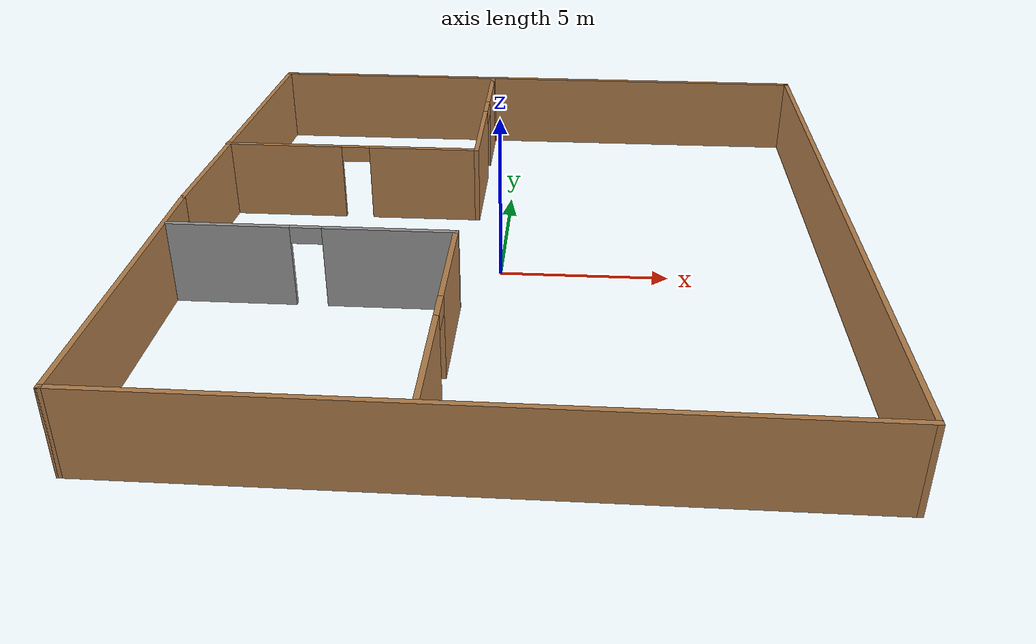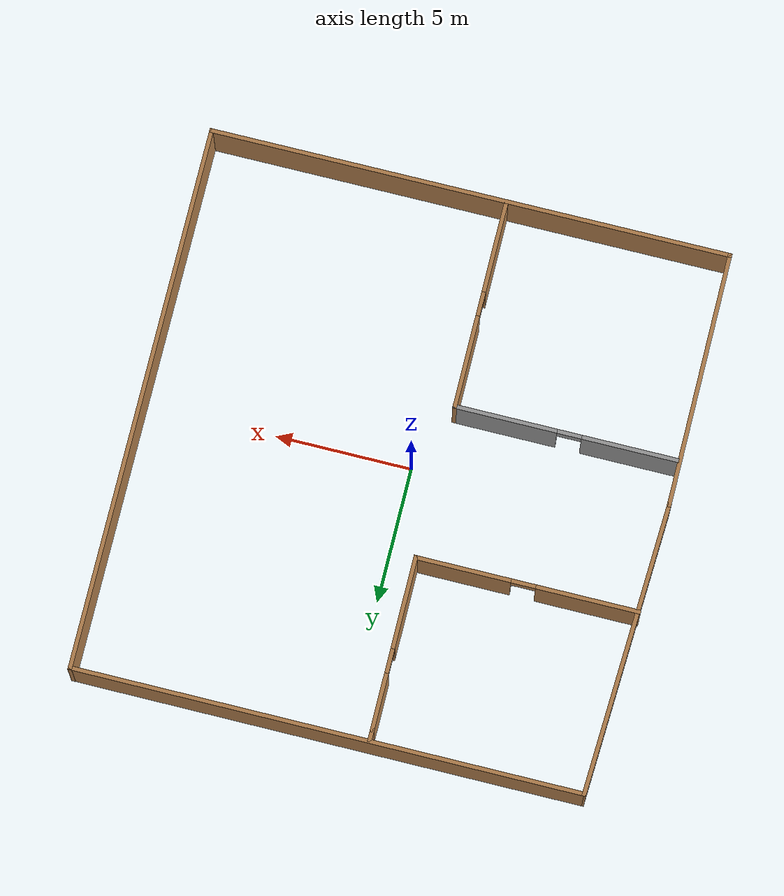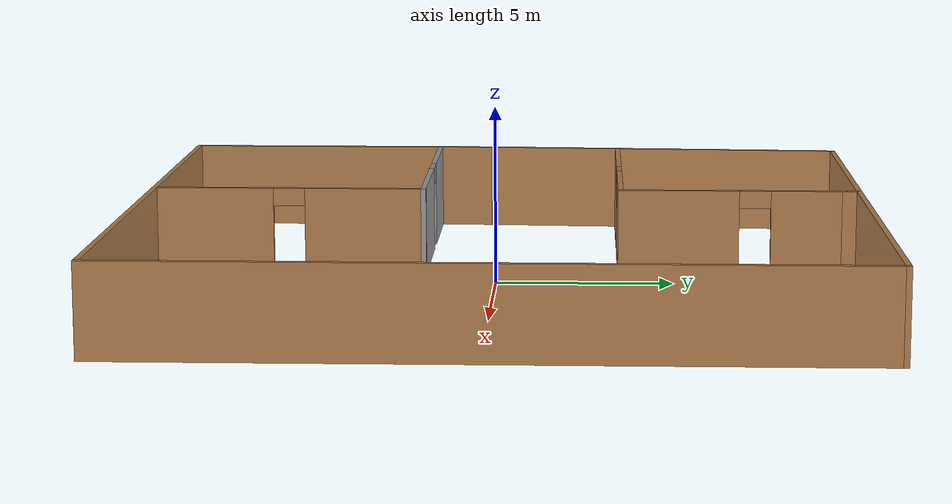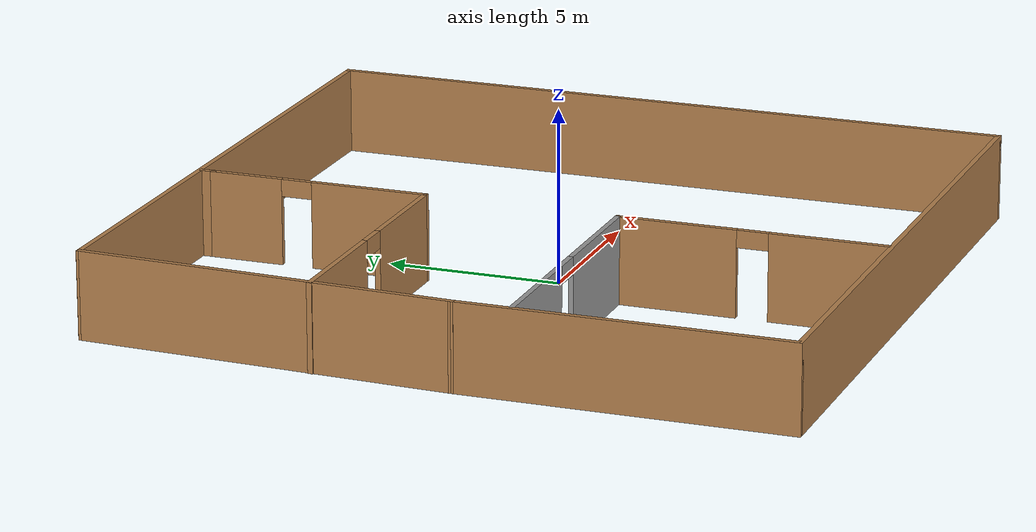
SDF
<?xml version='1.0'?>
<sdf version='1.7'>
  <model name='nha'>
    <pose>0.259593 0.237045 0 0 -0 0</pose>
    <link name='Wall_0'>
      <collision name='Wall_0_Collision'>
        <geometry>
          <box>
            <size>9.5 0.15 2.5</size>
          </box>
        </geometry>
        <pose>0 0 1.25 0 -0 0</pose>
      </collision>
      <visual name='Wall_0_Visual'>
        <pose>0 0 1.25 0 -0 0</pose>
        <geometry>
          <box>
            <size>9.5 0.15 2.5</size>
          </box>
        </geometry>
        <material>
          <script>
            <uri>file://media/materials/scripts/gazebo.material</uri>
            <name>Gazebo/Wood</name>
          </script>
          <ambient>1 1 1 1</ambient>
        </material>
        <meta>
          <layer>0</layer>
        </meta>
      </visual>
      <pose>-9.5483 -5.3767 0 0 -0 -1.5708</pose>
    </link>
    <link name='Wall_1'>
      <collision name='Wall_1_Collision'>
        <geometry>
          <box>
            <size>19.25 0.15 2.5</size>
          </box>
        </geometry>
        <pose>0 0 1.25 0 -0 0</pose>
      </collision>
      <visual name='Wall_1_Visual'>
        <pose>0 0 1.25 0 -0 0</pose>
        <geometry>
          <box>
            <size>19.25 0.15 2.5</size>
          </box>
        </geometry>
        <material>
          <script>
            <uri>file://media/materials/scripts/gazebo.material</uri>
            <name>Gazebo/Wood</name>
          </script>
          <ambient>1 1 1 1</ambient>
        </material>
        <meta>
          <layer>0</layer>
        </meta>
      </visual>
      <pose>0.001702 -10.0517 0 0 -0 0</pose>
    </link>
    <link name='Wall_10'>
      <pose>-1.33635 -6.13715 0 0 -0 1.5708</pose>
      <visual name='Wall_10_Visual_0'>
        <pose>-2.1859 0 1.25 0 -0 0</pose>
        <geometry>
          <box>
            <size>3.3782 0.15 2.5</size>
          </box>
        </geometry>
        <material>
          <script>
            <uri>file://media/materials/scripts/gazebo.material</uri>
            <name>Gazebo/Wood</name>
          </script>
          <ambient>1 1 1 1</ambient>
        </material>
        <meta>
          <layer>0</layer>
        </meta>
      </visual>
      <collision name='Wall_10_Collision_0'>
        <geometry>
          <box>
            <size>3.3782 0.15 2.5</size>
          </box>
        </geometry>
        <pose>-2.1859 0 1.25 0 -0 0</pose>
      </collision>
      <visual name='Wall_10_Visual_1'>
        <pose>2.1391 0 1.25 0 -0 0</pose>
        <geometry>
          <box>
            <size>3.4718 0.15 2.5</size>
          </box>
        </geometry>
        <material>
          <script>
            <uri>file://media/materials/scripts/gazebo.material</uri>
            <name>Gazebo/Wood</name>
          </script>
          <ambient>1 1 1 1</ambient>
        </material>
        <meta>
          <layer>0</layer>
        </meta>
      </visual>
      <collision name='Wall_10_Collision_1'>
        <geometry>
          <box>
            <size>3.4718 0.15 2.5</size>
          </box>
        </geometry>
        <pose>2.1391 0 1.25 0 -0 0</pose>
      </collision>
      <visual name='Wall_10_Visual_2'>
        <pose>-0.046799 0 2.25 0 -0 0</pose>
        <geometry>
          <box>
            <size>0.9 0.15 0.5</size>
          </box>
        </geometry>
        <material>
          <script>
            <uri>file://media/materials/scripts/gazebo.material</uri>
            <name>Gazebo/Wood</name>
          </script>
          <ambient>1 1 1 1</ambient>
        </material>
        <meta>
          <layer>0</layer>
        </meta>
      </visual>
      <collision name='Wall_10_Collision_2'>
        <geometry>
          <box>
            <size>0.9 0.15 0.5</size>
          </box>
        </geometry>
        <pose>-0.046799 0 2.25 0 -0 0</pose>
      </collision>
    </link>
    <link name='Wall_11'>
      <pose>-5.38635 -2.33715 0 0 -0 3.14159</pose>
      <visual name='Wall_11_Visual_0'>
        <pose>-2.22055 0 1.25 0 -0 0</pose>
        <geometry>
          <box>
            <size>3.8089 0.15 2.5</size>
          </box>
        </geometry>
        <material>
          <script>
            <uri>file://media/materials/scripts/gazebo.material</uri>
            <name>Gazebo/Grey</name>
          </script>
          <ambient>1 1 1 1</ambient>
        </material>
        <meta>
          <layer>0</layer>
        </meta>
      </visual>
      <collision name='Wall_11_Collision_0'>
        <geometry>
          <box>
            <size>3.8089 0.15 2.5</size>
          </box>
        </geometry>
        <pose>-2.22055 0 1.25 0 -0 0</pose>
      </collision>
      <visual name='Wall_11_Visual_1'>
        <pose>2.35445 0 1.25 0 -0 0</pose>
        <geometry>
          <box>
            <size>3.5411 0.15 2.5</size>
          </box>
        </geometry>
        <material>
          <script>
            <uri>file://media/materials/scripts/gazebo.material</uri>
            <name>Gazebo/Grey</name>
          </script>
          <ambient>1 1 1 1</ambient>
        </material>
        <meta>
          <layer>0</layer>
        </meta>
      </visual>
      <collision name='Wall_11_Collision_1'>
        <geometry>
          <box>
            <size>3.5411 0.15 2.5</size>
          </box>
        </geometry>
        <pose>2.35445 0 1.25 0 -0 0</pose>
      </collision>
      <visual name='Wall_11_Visual_2'>
        <pose>0.133896 0 2.25 0 -0 0</pose>
        <geometry>
          <box>
            <size>0.9 0.15 0.5</size>
          </box>
        </geometry>
        <material>
          <script>
            <uri>file://media/materials/scripts/gazebo.material</uri>
            <name>Gazebo/Grey</name>
          </script>
          <ambient>1 1 1 1</ambient>
        </material>
        <meta>
          <layer>0</layer>
        </meta>
      </visual>
      <collision name='Wall_11_Collision_2'>
        <geometry>
          <box>
            <size>0.9 0.15 0.5</size>
          </box>
        </geometry>
        <pose>0.133896 0 2.25 0 -0 0</pose>
      </collision>
    </link>
    <link name='Wall_2'>
      <collision name='Wall_2_Collision'>
        <geometry>
          <box>
            <size>20.25 0.15 2.5</size>
          </box>
        </geometry>
        <pose>0 0 1.25 0 -0 0</pose>
      </collision>
      <visual name='Wall_2_Visual'>
        <pose>0 0 1.25 0 -0 0</pose>
        <geometry>
          <box>
            <size>20.25 0.15 2.5</size>
          </box>
        </geometry>
        <material>
          <script>
            <uri>file://media/materials/scripts/gazebo.material</uri>
            <name>Gazebo/Wood</name>
          </script>
          <ambient>1 1 1 1</ambient>
        </material>
        <meta>
          <layer>0</layer>
        </meta>
      </visual>
      <pose>9.5517 -0.001702 0 0 -0 1.5708</pose>
    </link>
    <link name='Wall_3'>
      <collision name='Wall_3_Collision'>
        <geometry>
          <box>
            <size>18.75 0.15 2.5</size>
          </box>
        </geometry>
        <pose>0 0 1.25 0 -0 0</pose>
      </collision>
      <visual name='Wall_3_Visual'>
        <pose>0 0 1.25 0 -0 0</pose>
        <geometry>
          <box>
            <size>18.75 0.15 2.5</size>
          </box>
        </geometry>
        <material>
          <script>
            <uri>file://media/materials/scripts/gazebo.material</uri>
            <name>Gazebo/Wood</name>
          </script>
          <ambient>1 1 1 1</ambient>
        </material>
        <meta>
          <layer>0</layer>
        </meta>
      </visual>
      <pose>0.251702 10.0483 0 0 -0 3.14159</pose>
    </link>
    <link name='Wall_4'>
      <collision name='Wall_4_Collision'>
        <geometry>
          <box>
            <size>10.9116 0.15 2.5</size>
          </box>
        </geometry>
        <pose>0 0 1.25 0 -0 0</pose>
      </collision>
      <visual name='Wall_4_Visual'>
        <pose>0 0 1.25 0 -0 0</pose>
        <geometry>
          <box>
            <size>10.9116 0.15 2.5</size>
          </box>
        </geometry>
        <material>
          <script>
            <uri>file://media/materials/scripts/gazebo.material</uri>
            <name>Gazebo/Wood</name>
          </script>
          <ambient>1 1 1 1</ambient>
        </material>
        <meta>
          <layer>0</layer>
        </meta>
      </visual>
      <pose>-9.2983 4.6733 0 0 -0 -1.61727</pose>
    </link>
    <link name='Wall_6'>
      <pose>-5.3465 3.29134 0 0 -0 0</pose>
      <visual name='Wall_6_Visual_0'>
        <pose>-2.22055 0 1.25 0 -0 0</pose>
        <geometry>
          <box>
            <size>3.8089 0.15 2.5</size>
          </box>
        </geometry>
        <material>
          <script>
            <uri>file://media/materials/scripts/gazebo.material</uri>
            <name>Gazebo/Wood</name>
          </script>
          <ambient>1 1 1 1</ambient>
        </material>
        <meta>
          <layer>0</layer>
        </meta>
      </visual>
      <collision name='Wall_6_Collision_0'>
        <geometry>
          <box>
            <size>3.8089 0.15 2.5</size>
          </box>
        </geometry>
        <pose>-2.22055 0 1.25 0 -0 0</pose>
      </collision>
      <visual name='Wall_6_Visual_1'>
        <pose>2.35445 0 1.25 0 -0 0</pose>
        <geometry>
          <box>
            <size>3.5411 0.15 2.5</size>
          </box>
        </geometry>
        <material>
          <script>
            <uri>file://media/materials/scripts/gazebo.material</uri>
            <name>Gazebo/Wood</name>
          </script>
          <ambient>1 1 1 1</ambient>
        </material>
        <meta>
          <layer>0</layer>
        </meta>
      </visual>
      <collision name='Wall_6_Collision_1'>
        <geometry>
          <box>
            <size>3.5411 0.15 2.5</size>
          </box>
        </geometry>
        <pose>2.35445 0 1.25 0 -0 0</pose>
      </collision>
      <visual name='Wall_6_Visual_2'>
        <pose>0.133896 0 2.25 0 -0 0</pose>
        <geometry>
          <box>
            <size>0.9 0.15 0.5</size>
          </box>
        </geometry>
        <material>
          <script>
            <uri>file://media/materials/scripts/gazebo.material</uri>
            <name>Gazebo/Wood</name>
          </script>
          <ambient>1 1 1 1</ambient>
        </material>
        <meta>
          <layer>0</layer>
        </meta>
      </visual>
      <collision name='Wall_6_Collision_2'>
        <geometry>
          <box>
            <size>0.9 0.15 0.5</size>
          </box>
        </geometry>
        <pose>0.133896 0 2.25 0 -0 0</pose>
      </collision>
    </link>
    <link name='Wall_7'>
      <pose>-1.2965 6.46634 0 0 -0 1.5708</pose>
      <visual name='Wall_7_Visual_0'>
        <pose>-1.53014 0 1.25 0 -0 0</pose>
        <geometry>
          <box>
            <size>3.43973 0.15 2.5</size>
          </box>
        </geometry>
        <material>
          <script>
            <uri>file://media/materials/scripts/gazebo.material</uri>
            <name>Gazebo/Wood</name>
          </script>
          <ambient>1 1 1 1</ambient>
        </material>
        <meta>
          <layer>0</layer>
        </meta>
      </visual>
      <collision name='Wall_7_Collision_0'>
        <geometry>
          <box>
            <size>3.43973 0.15 2.5</size>
          </box>
        </geometry>
        <pose>-1.53014 0 1.25 0 -0 0</pose>
      </collision>
      <visual name='Wall_7_Visual_1'>
        <pose>2.16986 0 1.25 0 -0 0</pose>
        <geometry>
          <box>
            <size>2.16027 0.15 2.5</size>
          </box>
        </geometry>
        <material>
          <script>
            <uri>file://media/materials/scripts/gazebo.material</uri>
            <name>Gazebo/Wood</name>
          </script>
          <ambient>1 1 1 1</ambient>
        </material>
        <meta>
          <layer>0</layer>
        </meta>
      </visual>
      <collision name='Wall_7_Collision_1'>
        <geometry>
          <box>
            <size>2.16027 0.15 2.5</size>
          </box>
        </geometry>
        <pose>2.16986 0 1.25 0 -0 0</pose>
      </collision>
      <visual name='Wall_7_Visual_2'>
        <pose>0.639728 0 2.25 0 -0 0</pose>
        <geometry>
          <box>
            <size>0.9 0.15 0.5</size>
          </box>
        </geometry>
        <material>
          <script>
            <uri>file://media/materials/scripts/gazebo.material</uri>
            <name>Gazebo/Wood</name>
          </script>
          <ambient>1 1 1 1</ambient>
        </material>
        <meta>
          <layer>0</layer>
        </meta>
      </visual>
      <collision name='Wall_7_Collision_2'>
        <geometry>
          <box>
            <size>0.9 0.15 0.5</size>
          </box>
        </geometry>
        <pose>0.639728 0 2.25 0 -0 0</pose>
      </collision>
    </link>
    <link name='Wall_8'>
      <collision name='Wall_8_Collision'>
        <geometry>
          <box>
            <size>0.5 0.15 2.5</size>
          </box>
        </geometry>
        <pose>0 0 1.25 0 -0 0</pose>
      </collision>
      <visual name='Wall_8_Visual'>
        <pose>0 0 1.25 0 -0 0</pose>
        <geometry>
          <box>
            <size>0.5 0.15 2.5</size>
          </box>
        </geometry>
        <material>
          <script>
            <uri>file://media/materials/scripts/gazebo.material</uri>
            <name>Gazebo/Wood</name>
          </script>
          <ambient>1 1 1 1</ambient>
        </material>
        <meta>
          <layer>0</layer>
        </meta>
      </visual>
      <pose>-1.2965 9.81634 0 0 -0 1.5708</pose>
    </link>
    <static>1</static>
  </model>
</sdf>
